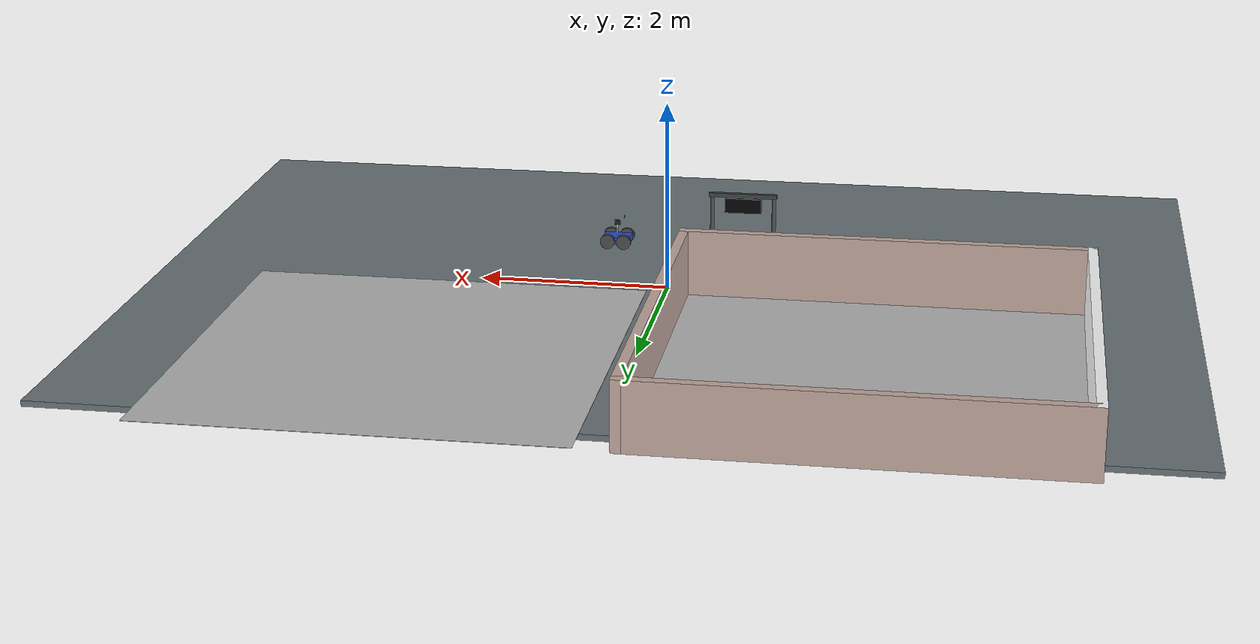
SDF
<sdf version="1.7">
 <world name="model_gallery">
  <gravity>0 0 -9.8</gravity>
  <physics name="default_physics" type="ode">
   <max_step_size>0.001</max_step_size>
   <real_time_update_rate>1000</real_time_update_rate>
  </physics>
  <scene>
   <ambient>0.55 0.55 0.55 1</ambient>
   <background>0.72 0.77 0.82 1</background>
   <shadows>true</shadows>
  </scene>
  <light name="sun" type="directional">
   <pose>0 0 10 0 0 0</pose>
   <diffuse>0.9 0.9 0.9 1</diffuse>
   <specular>0.2 0.2 0.2 1</specular>
   <direction>-0.45 0.25 -0.86</direction>
  </light>
  <model name="gallery_floor">
   <static>true</static>
   <link name="floor">
    <collision name="collision">
     <pose>0 0 -0.035 0 0 0</pose>
     <geometry><box><size>11 8 0.06</size></box></geometry>
    </collision>
    <visual name="visual">
     <pose>0 0 -0.035 0 0 0</pose>
     <geometry><box><size>11 8 0.06</size></box></geometry>
     <material><ambient>0.24 0.27 0.29 1</ambient><diffuse>0.42 0.46 0.48 1</diffuse></material>
    </visual>
   </link>
  </model>
  <include>
   <uri>model://map_plane</uri>
   <name>terrain_original_map_plane</name>
   <pose>-2.3 2.25 0 0 0 0</pose>
  </include>
  <include>
   <uri>model://map_walls</uri>
   <name>competition_map_walls</name>
   <pose>-2.3 2.25 0 0 0 0</pose>
  </include>
  <include>
   <uri>model://my_ground_plane</uri>
   <name>terrain_route_ground</name>
   <pose>2.3 2.25 0.004 0 0 0</pose>
  </include>
  <include>
   <uri>model://traffic_light</uri>
   <name>competition_horizontal_traffic_light</name>
   <pose>-0.65 -1.25 0 0 0 0</pose>
  </include>
  <include>
   <uri>model://traffic_light_red_lens</uri>
   <name>competition_red_lens</name>
   <pose>-0.65 -1.25 0 0 0 0</pose>
  </include>
  <include>
   <uri>model://traffic_light_yellow_lens</uri>
   <name>competition_yellow_lens</name>
   <pose>-0.65 -1.25 0 0 0 0</pose>
  </include>
  <include>
   <uri>model://traffic_light_green_lens</uri>
   <name>competition_green_lens</name>
   <pose>-0.65 -1.25 0 0 0 0</pose>
  </include>
  <include>
   <uri>model://competition_car</uri>
   <name>competition_car</name>
   <pose>0.75 -1.25 0.02 0 0 3.141593</pose>
  </include>
 </world>
</sdf>

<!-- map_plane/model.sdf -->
<sdf version="1.6">
  <model name="map_plane">
    <static>true</static> <!-- 地面静止不动 -->
    <link name="link">
      <!-- 视觉部分 -->
      <visual name="visual">
        <geometry>
          <plane>
            <normal>0 0 1</normal>
            <size>4.2 4.2</size> <!-- 修改平面大小为 4.2x4.2 -->
          </plane>
        </geometry>
        <material>
          <script>
            <uri>model://map_plane/materials/scripts</uri>
            <uri>model://map_plane/materials/textures</uri>
            <name>map/material</name>  <!-- 对应 map.material 中定义的名称 -->
          </script>
        </material>
      </visual>

      <!-- 碰撞部分 -->
      <collision name="collision">
        <geometry>
          <plane>
            <normal>0 0 1</normal>  <!-- 确保碰撞体与视觉体的朝向一致 -->
            <size>4.2 4.2</size> <!-- 修改碰撞体的大小为 4.2x4.2 -->
          </plane>
        </geometry>
      </collision>
    </link>
  </model>
</sdf>

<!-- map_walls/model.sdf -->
<sdf version="1.6">
  <model name="map_walls">
    <static>true</static>

    <link name="south_wall">
      <pose>0 -2.1 0 0 0 0</pose>
      <collision name="collision">
        <pose>0 0 0.35 0 0 0</pose>
        <geometry><box><size>4.3 0.1 0.7</size></box></geometry>
      </collision>
      <visual name="visual">
        <pose>0 0 0.35 0 0 0</pose>
        <geometry><box><size>4.3 0.1 0.7</size></box></geometry>
        <material>
          <ambient>0.760784 0.662745 0.627451 1</ambient>
          <diffuse>0.760784 0.662745 0.627451 1</diffuse>
        </material>
      </visual>
    </link>

    <link name="east_wall">
      <pose>2.1 0 0 0 0 1.5708</pose>
      <collision name="collision">
        <pose>0 0 0.35 0 0 0</pose>
        <geometry><box><size>4.3 0.1 0.7</size></box></geometry>
      </collision>
      <visual name="visual">
        <pose>0 0 0.35 0 0 0</pose>
        <geometry><box><size>4.3 0.1 0.7</size></box></geometry>
        <material>
          <ambient>0.760784 0.662745 0.627451 1</ambient>
          <diffuse>0.760784 0.662745 0.627451 1</diffuse>
        </material>
      </visual>
    </link>

    <link name="north_wall">
      <pose>0 2.1 0 0 0 3.14159</pose>
      <collision name="collision">
        <pose>0 0 0.35 0 0 0</pose>
        <geometry><box><size>4.3 0.1 0.7</size></box></geometry>
      </collision>
      <visual name="visual">
        <pose>0 0 0.35 0 0 0</pose>
        <geometry><box><size>4.3 0.1 0.7</size></box></geometry>
        <material>
          <ambient>0.760784 0.662745 0.627451 1</ambient>
          <diffuse>0.760784 0.662745 0.627451 1</diffuse>
        </material>
      </visual>
    </link>

    <link name="west_wall">
      <pose>-2.1 0 0 0 0 -1.5708</pose>
      <collision name="collision">
        <pose>0 0 0.35 0 0 0</pose>
        <geometry><box><size>4.3 0.1 0.7</size></box></geometry>
      </collision>
      <visual name="visual">
        <pose>0 0 0.35 0 0 0</pose>
        <geometry><box><size>4.3 0.1 0.7</size></box></geometry>
        <material>
          <ambient>1 1 1 1</ambient>
          <diffuse>1 1 1 1</diffuse>
        </material>
      </visual>
    </link>
  </model>
</sdf>

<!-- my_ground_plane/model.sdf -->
<sdf version="1.6">
  <model name="my_ground_plane">
    <static>true</static>
    <link name="link">
      <collision name="collision">
        <geometry><plane><normal>0 0 1</normal><size>4.2 4.2</size></plane></geometry>
      </collision>
      <visual name="visual">
        <pose>0 0 0.002 0 0 0</pose>
        <geometry><plane><normal>0 0 1</normal><size>4.2 4.2</size></plane></geometry>
        <material><script><uri>model://my_ground_plane/materials/scripts</uri><uri>model://my_ground_plane/materials/textures</uri><name>MyGroundPlane/Image</name></script></material>
      </visual>
    </link>
  </model>
</sdf>

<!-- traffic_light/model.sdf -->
<sdf version="1.6">
  <model name="traffic_light">
    <static>true</static>
    <link name="gantry">
      <collision name="left_post_collision">
        <pose>-0.34 0 0.32 0 0 0</pose>
        <geometry><cylinder><radius>0.022</radius><length>0.64</length></cylinder></geometry>
      </collision>
      <collision name="right_post_collision">
        <pose>0.34 0 0.32 0 0 0</pose>
        <geometry><cylinder><radius>0.022</radius><length>0.64</length></cylinder></geometry>
      </collision>
      <collision name="crossbar_collision">
        <pose>0 0 0.66 0 0 0</pose>
        <geometry><box><size>0.75 0.045 0.045</size></box></geometry>
      </collision>
      <collision name="housing_collision">
        <pose>0 0 0.55 0 0 0</pose>
        <geometry><box><size>0.40 0.075 0.16</size></box></geometry>
      </collision>

      <visual name="left_foot">
        <pose>-0.34 0 0.025 0 0 0</pose>
        <geometry><cylinder><radius>0.055</radius><length>0.05</length></cylinder></geometry>
        <material><ambient>0.06 0.07 0.07 1</ambient><diffuse>0.12 0.14 0.14 1</diffuse></material>
      </visual>
      <visual name="right_foot">
        <pose>0.34 0 0.025 0 0 0</pose>
        <geometry><cylinder><radius>0.055</radius><length>0.05</length></cylinder></geometry>
        <material><ambient>0.06 0.07 0.07 1</ambient><diffuse>0.12 0.14 0.14 1</diffuse></material>
      </visual>
      <visual name="left_post">
        <pose>-0.34 0 0.32 0 0 0</pose>
        <geometry><cylinder><radius>0.022</radius><length>0.64</length></cylinder></geometry>
        <material><ambient>0.16 0.18 0.18 1</ambient><diffuse>0.28 0.31 0.31 1</diffuse><specular>0.25 0.25 0.25 1</specular></material>
      </visual>
      <visual name="right_post">
        <pose>0.34 0 0.32 0 0 0</pose>
        <geometry><cylinder><radius>0.022</radius><length>0.64</length></cylinder></geometry>
        <material><ambient>0.16 0.18 0.18 1</ambient><diffuse>0.28 0.31 0.31 1</diffuse><specular>0.25 0.25 0.25 1</specular></material>
      </visual>
      <visual name="crossbar">
        <pose>0 0 0.66 0 0 0</pose>
        <geometry><box><size>0.75 0.045 0.045</size></box></geometry>
        <material><ambient>0.12 0.14 0.14 1</ambient><diffuse>0.24 0.27 0.27 1</diffuse><specular>0.25 0.25 0.25 1</specular></material>
      </visual>
      <visual name="left_hanger">
        <pose>-0.14 0 0.615 0 0 0</pose>
        <geometry><box><size>0.025 0.035 0.07</size></box></geometry>
        <material><ambient>0.06 0.07 0.07 1</ambient><diffuse>0.12 0.14 0.14 1</diffuse></material>
      </visual>
      <visual name="right_hanger">
        <pose>0.14 0 0.615 0 0 0</pose>
        <geometry><box><size>0.025 0.035 0.07</size></box></geometry>
        <material><ambient>0.06 0.07 0.07 1</ambient><diffuse>0.12 0.14 0.14 1</diffuse></material>
      </visual>
      <visual name="housing">
        <pose>0 0 0.55 0 0 0</pose>
        <geometry><box><size>0.40 0.075 0.16</size></box></geometry>
        <material><ambient>0.008 0.010 0.010 1</ambient><diffuse>0.016 0.020 0.020 1</diffuse><specular>0.10 0.10 0.10 1</specular></material>
      </visual>
      <visual name="red_lens_off">
        <pose>-0.12 -0.044 0.55 1.570796 0 0</pose>
        <geometry><cylinder><radius>0.045</radius><length>0.014</length></cylinder></geometry>
        <material><ambient>0.030 0.001 0.001 1</ambient><diffuse>0.045 0.002 0.002 1</diffuse></material>
      </visual>
      <visual name="yellow_lens_off">
        <pose>0 -0.044 0.55 1.570796 0 0</pose>
        <geometry><cylinder><radius>0.045</radius><length>0.014</length></cylinder></geometry>
        <material><ambient>0.025 0.015 0.001 1</ambient><diffuse>0.040 0.024 0.002 1</diffuse></material>
      </visual>
      <visual name="green_lens_off">
        <pose>0.12 -0.044 0.55 1.570796 0 0</pose>
        <geometry><cylinder><radius>0.045</radius><length>0.014</length></cylinder></geometry>
        <material><ambient>0.001 0.030 0.003 1</ambient><diffuse>0.002 0.045 0.004 1</diffuse></material>
      </visual>
    </link>
  </model>
</sdf>

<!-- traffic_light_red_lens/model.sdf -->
<sdf version="1.6">
  <model name="traffic_light_red_lens">
    <static>false</static>
    <link name="lens">
      <gravity>false</gravity>
      <kinematic>true</kinematic>
      <visual name="red_visual">
        <pose>-0.12 -0.046 0.55 1.570796 0 0</pose>
        <cast_shadows>false</cast_shadows>
        <geometry><cylinder><radius>0.041</radius><length>0.016</length></cylinder></geometry>
        <material>
          <ambient>1.0 0.005 0.005 1</ambient>
          <diffuse>1.0 0.005 0.005 1</diffuse>
          <emissive>0.58 0.003 0.003 1</emissive>
          <specular>0.15 0.15 0.15 1</specular>
        </material>
      </visual>
    </link>
  </model>
</sdf>

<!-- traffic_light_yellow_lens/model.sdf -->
<sdf version="1.6">
  <model name="traffic_light_yellow_lens">
    <static>false</static>
    <link name="lens">
      <gravity>false</gravity>
      <kinematic>true</kinematic>
      <visual name="yellow_visual">
        <pose>0 -0.046 0.55 1.570796 0 0</pose>
        <cast_shadows>false</cast_shadows>
        <geometry><cylinder><radius>0.041</radius><length>0.016</length></cylinder></geometry>
        <material>
          <ambient>1.0 0.72 0.005 1</ambient>
          <diffuse>1.0 0.72 0.005 1</diffuse>
          <emissive>0.58 0.40 0.003 1</emissive>
          <specular>0.15 0.15 0.15 1</specular>
        </material>
      </visual>
    </link>
  </model>
</sdf>

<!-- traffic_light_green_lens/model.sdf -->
<sdf version="1.6">
  <model name="traffic_light_green_lens">
    <static>false</static>
    <link name="lens">
      <gravity>false</gravity>
      <kinematic>true</kinematic>
      <visual name="green_visual">
        <pose>0.12 -0.046 0.55 1.570796 0 0</pose>
        <cast_shadows>false</cast_shadows>
        <geometry><cylinder><radius>0.041</radius><length>0.016</length></cylinder></geometry>
        <material>
          <ambient>0.005 1.0 0.02 1</ambient>
          <diffuse>0.005 1.0 0.02 1</diffuse>
          <emissive>0.003 0.58 0.012 1</emissive>
          <specular>0.15 0.15 0.15 1</specular>
        </material>
      </visual>
    </link>
  </model>
</sdf>

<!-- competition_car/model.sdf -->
<sdf version='1.7'>
  <model name='armbot'>
    <link name='base_footprint'>
      <inertial>
        <pose>0.00127 0 0.116548 0 -0 0</pose>
        <mass>0.63</mass>
        <inertia>
          <ixx>0.00750366</ixx>
          <ixy>0</ixy>
          <ixz>-0.000172762</ixz>
          <iyy>0.00896664</iyy>
          <iyz>0</iyz>
          <izz>0.00204336</izz>
        </inertia>
      </inertial>
      <collision name='base_footprint_fixed_joint_lump__base_link_collision'>
        <pose>0 0 0.08 0 -0 0</pose>
        <geometry>
          <box>
            <size>0.3 0.2 0.08</size>
          </box>
        </geometry>
        <surface>
          <contact>
            <ode/>
          </contact>
          <friction>
            <ode/>
          </friction>
        </surface>
      </collision>
      <collision name='base_footprint_fixed_joint_lump__camera_collision_1'>
        <pose>0.08 0 0.3325 0 -0 0</pose>
        <geometry>
          <box>
            <size>0.01 0.025 0.025</size>
          </box>
        </geometry>
        <surface>
          <contact>
            <ode/>
          </contact>
          <friction>
            <ode/>
          </friction>
        </surface>
      </collision>
      <collision name='base_footprint_fixed_joint_lump__support_collision_2'>
        <pose>0 0 0.18 0 -0 0</pose>
        <geometry>
          <cylinder>
            <length>0.12</length>
            <radius>0.01</radius>
          </cylinder>
        </geometry>
        <surface>
          <contact>
            <ode/>
          </contact>
          <friction>
            <ode/>
          </friction>
        </surface>
      </collision>
      <collision name='base_footprint_fixed_joint_lump__laser_collision_3'>
        <pose>0 0 0.265 0 -0 0</pose>
        <geometry>
          <cylinder>
            <length>0.05</length>
            <radius>0.03</radius>
          </cylinder>
        </geometry>
        <surface>
          <contact>
            <ode/>
          </contact>
          <friction>
            <ode/>
          </friction>
        </surface>
      </collision>
      <visual name='base_footprint_fixed_joint_lump__base_link_visual'>
        <pose>0 0 0.08 0 -0 0</pose>
        <geometry>
          <box>
            <size>0.3 0.2 0.08</size>
          </box>
        </geometry>
        <material>
          <script>
            <name>Gazebo/Blue</name>
            <uri>file://media/materials/scripts/gazebo.material</uri>
          </script>
        </material>
      </visual>
      <visual name='base_footprint_fixed_joint_lump__camera_visual_1'>
        <pose>0.08 0 0.3325 0 -0 0</pose>
        <geometry>
          <box>
            <size>0.01 0.025 0.025</size>
          </box>
        </geometry>
        <material>
          <script>
            <name>Gazebo/Blue</name>
            <uri>file://media/materials/scripts/gazebo.material</uri>
          </script>
        </material>
      </visual>
      <visual name='base_footprint_fixed_joint_lump__support_visual_2'>
        <pose>0 0 0.18 0 -0 0</pose>
        <geometry>
          <cylinder>
            <length>0.12</length>
            <radius>0.01</radius>
          </cylinder>
        </geometry>
        <material>
          <script>
            <name>Gazebo/White</name>
            <uri>file://media/materials/scripts/gazebo.material</uri>
          </script>
        </material>
      </visual>
      <visual name='base_footprint_fixed_joint_lump__laser_visual_3'>
        <pose>0 0 0.265 0 -0 0</pose>
        <geometry>
          <cylinder>
            <length>0.05</length>
            <radius>0.03</radius>
          </cylinder>
        </geometry>
        <material>
          <script>
            <name>Gazebo/Black</name>
            <uri>file://media/materials/scripts/gazebo.material</uri>
          </script>
        </material>
      </visual>
      <sensor name='camera_node' type='camera'>
        <update_rate>30</update_rate>
        <camera name='head'>
          <horizontal_fov>1.39626</horizontal_fov>
          <image>
            <width>1280</width>
            <height>720</height>
            <format>R8G8B8</format>
          </image>
          <clip>
            <near>0.02</near>
            <far>300</far>
          </clip>
          <noise>
            <type>gaussian</type>
            <mean>0</mean>
            <stddev>0.007</stddev>
          </noise>
        </camera>
        <plugin name='gazebo_camera' filename='libgazebo_ros_camera.so'>
          <alwaysOn>1</alwaysOn>
          <updateRate>0.0</updateRate>
          <cameraName>camera</cameraName>
          <imageTopicName>image_raw</imageTopicName>
          <cameraInfoTopicName>camera_info</cameraInfoTopicName>
          <frameName>camera</frameName>
          <hackBaseline>0.07</hackBaseline>
          <distortionK1>0.0</distortionK1>
          <distortionK2>0.0</distortionK2>
          <distortionK3>0.0</distortionK3>
          <distortionT1>0.0</distortionT1>
          <distortionT2>0.0</distortionT2>
        </plugin>
        <pose>0.08 0 0.3325 0 -0 0</pose>
      </sensor>
      <sensor name='laser_sensor' type='ray'>
        <visualize>0</visualize>
        <update_rate>40</update_rate>
        <ray>
          <scan>
            <horizontal>
              <samples>720</samples>
              <resolution>1</resolution>
              <min_angle>-2.35619</min_angle>
              <max_angle>2.35619</max_angle>
            </horizontal>
          </scan>
          <range>
            <min>0.1</min>
            <max>12</max>
            <resolution>0.01</resolution>
          </range>
          <noise>
            <type>gaussian</type>
            <mean>0</mean>
            <stddev>0.01</stddev>
          </noise>
        </ray>
        <plugin name='gazebo_ros_laser_controller' filename='libgazebo_ros_laser.so'>
          <topicName>/scan</topicName>
          <frameName>laser</frameName>
        </plugin>
        <pose>0 0 0.265 0 -0 0</pose>
      </sensor>
    </link>
    <joint name='back_left_wheel_joint' type='revolute'>
      <pose relative_to='base_footprint'>-0.09 0.132 0.08 0 -0 0</pose>
      <parent>base_footprint</parent>
      <child>back_left_wheel</child>
      <axis>
        <xyz>0 1 0</xyz>
        <limit>
          <lower>-1e+16</lower>
          <upper>1e+16</upper>
        </limit>
        <dynamics>
          <damping>0</damping>
          <friction>0</friction>
          <spring_reference>0</spring_reference>
          <spring_stiffness>0</spring_stiffness>
        </dynamics>
      </axis>
    </joint>
    <link name='back_left_wheel'>
      <pose relative_to='back_left_wheel_joint'>0 0 0 0 -0 0</pose>
      <inertial>
        <pose>0 0 0 0 -0 0</pose>
        <mass>0.1</mass>
        <inertia>
          <ixx>0.000173333</ixx>
          <ixy>0</ixy>
          <ixz>0</ixz>
          <iyy>0.000173333</iyy>
          <iyz>0</iyz>
          <izz>0.00032</izz>
        </inertia>
      </inertial>
      <collision name='back_left_wheel_collision'>
        <pose>0 0 0 1.5708 -0 0</pose>
        <geometry>
          <cylinder>
            <length>0.04</length>
            <radius>0.08</radius>
          </cylinder>
        </geometry>
        <surface>
          <contact>
            <ode>
              <kp>1e+06</kp>
              <kd>1</kd>
            </ode>
          </contact>
          <friction>
            <ode>
              <mu>1</mu>
              <mu2>1</mu2>
            </ode>
          </friction>
        </surface>
      </collision>
      <visual name='back_left_wheel_visual'>
        <pose>0 0 0 1.5708 -0 0</pose>
        <geometry>
          <cylinder>
            <length>0.04</length>
            <radius>0.08</radius>
          </cylinder>
        </geometry>
        <material>
          <script>
            <name>Gazebo/DarkGrey</name>
            <uri>file://media/materials/scripts/gazebo.material</uri>
          </script>
        </material>
      </visual>
    </link>
    <joint name='back_right_wheel_joint' type='revolute'>
      <pose relative_to='base_footprint'>-0.09 -0.132 0.08 0 -0 0</pose>
      <parent>base_footprint</parent>
      <child>back_right_wheel</child>
      <axis>
        <xyz>0 1 0</xyz>
        <limit>
          <lower>-1e+16</lower>
          <upper>1e+16</upper>
        </limit>
        <dynamics>
          <damping>0</damping>
          <friction>0</friction>
          <spring_reference>0</spring_reference>
          <spring_stiffness>0</spring_stiffness>
        </dynamics>
      </axis>
    </joint>
    <link name='back_right_wheel'>
      <pose relative_to='back_right_wheel_joint'>0 0 0 0 -0 0</pose>
      <inertial>
        <pose>0 0 0 0 -0 0</pose>
        <mass>0.1</mass>
        <inertia>
          <ixx>0.000173333</ixx>
          <ixy>0</ixy>
          <ixz>0</ixz>
          <iyy>0.000173333</iyy>
          <iyz>0</iyz>
          <izz>0.00032</izz>
        </inertia>
      </inertial>
      <collision name='back_right_wheel_collision'>
        <pose>0 0 0 1.5708 -0 0</pose>
        <geometry>
          <cylinder>
            <length>0.04</length>
            <radius>0.08</radius>
          </cylinder>
        </geometry>
        <surface>
          <contact>
            <ode>
              <kp>1e+06</kp>
              <kd>1</kd>
            </ode>
          </contact>
          <friction>
            <ode>
              <mu>1</mu>
              <mu2>1</mu2>
            </ode>
          </friction>
        </surface>
      </collision>
      <visual name='back_right_wheel_visual'>
        <pose>0 0 0 1.5708 -0 0</pose>
        <geometry>
          <cylinder>
            <length>0.04</length>
            <radius>0.08</radius>
          </cylinder>
        </geometry>
        <material>
          <script>
            <name>Gazebo/DarkGrey</name>
            <uri>file://media/materials/scripts/gazebo.material</uri>
          </script>
        </material>
      </visual>
    </link>
    <joint name='front_left_wheel_joint' type='revolute'>
      <pose relative_to='base_footprint'>0.09 0.132 0.08 0 -0 0</pose>
      <parent>base_footprint</parent>
      <child>front_left_wheel</child>
      <axis>
        <xyz>0 1 0</xyz>
        <limit>
          <lower>-1e+16</lower>
          <upper>1e+16</upper>
        </limit>
        <dynamics>
          <damping>0</damping>
          <friction>0</friction>
          <spring_reference>0</spring_reference>
          <spring_stiffness>0</spring_stiffness>
        </dynamics>
      </axis>
    </joint>
    <link name='front_left_wheel'>
      <pose relative_to='front_left_wheel_joint'>0 0 0 0 -0 0</pose>
      <inertial>
        <pose>0 0 0 0 -0 0</pose>
        <mass>0.1</mass>
        <inertia>
          <ixx>0.000173333</ixx>
          <ixy>0</ixy>
          <ixz>0</ixz>
          <iyy>0.000173333</iyy>
          <iyz>0</iyz>
          <izz>0.00032</izz>
        </inertia>
      </inertial>
      <collision name='front_left_wheel_collision'>
        <pose>0 0 0 1.5708 -0 0</pose>
        <geometry>
          <cylinder>
            <length>0.04</length>
            <radius>0.08</radius>
          </cylinder>
        </geometry>
        <surface>
          <contact>
            <ode>
              <kp>1e+06</kp>
              <kd>1</kd>
            </ode>
          </contact>
          <friction>
            <ode>
              <mu>1</mu>
              <mu2>1</mu2>
            </ode>
          </friction>
        </surface>
      </collision>
      <visual name='front_left_wheel_visual'>
        <pose>0 0 0 1.5708 -0 0</pose>
        <geometry>
          <cylinder>
            <length>0.04</length>
            <radius>0.08</radius>
          </cylinder>
        </geometry>
        <material>
          <script>
            <name>Gazebo/DarkGrey</name>
            <uri>file://media/materials/scripts/gazebo.material</uri>
          </script>
        </material>
      </visual>
    </link>
    <joint name='front_right_wheel_joint' type='revolute'>
      <pose relative_to='base_footprint'>0.09 -0.132 0.08 0 -0 0</pose>
      <parent>base_footprint</parent>
      <child>front_right_wheel</child>
      <axis>
        <xyz>0 1 0</xyz>
        <limit>
          <lower>-1e+16</lower>
          <upper>1e+16</upper>
        </limit>
        <dynamics>
          <damping>0</damping>
          <friction>0</friction>
          <spring_reference>0</spring_reference>
          <spring_stiffness>0</spring_stiffness>
        </dynamics>
      </axis>
    </joint>
    <link name='front_right_wheel'>
      <pose relative_to='front_right_wheel_joint'>0 0 0 0 -0 0</pose>
      <inertial>
        <pose>0 0 0 0 -0 0</pose>
        <mass>0.1</mass>
        <inertia>
          <ixx>0.000173333</ixx>
          <ixy>0</ixy>
          <ixz>0</ixz>
          <iyy>0.000173333</iyy>
          <iyz>0</iyz>
          <izz>0.00032</izz>
        </inertia>
      </inertial>
      <collision name='front_right_wheel_collision'>
        <pose>0 0 0 1.5708 -0 0</pose>
        <geometry>
          <cylinder>
            <length>0.04</length>
            <radius>0.08</radius>
          </cylinder>
        </geometry>
        <surface>
          <contact>
            <ode>
              <kp>1e+06</kp>
              <kd>1</kd>
            </ode>
          </contact>
          <friction>
            <ode>
              <mu>1</mu>
              <mu2>1</mu2>
            </ode>
          </friction>
        </surface>
      </collision>
      <visual name='front_right_wheel_visual'>
        <pose>0 0 0 1.5708 -0 0</pose>
        <geometry>
          <cylinder>
            <length>0.04</length>
            <radius>0.08</radius>
          </cylinder>
        </geometry>
        <material>
          <script>
            <name>Gazebo/DarkGrey</name>
            <uri>file://media/materials/scripts/gazebo.material</uri>
          </script>
        </material>
      </visual>
    </link>
    <plugin name='mobile_base_controller' filename='libgazebo_ros_skid_steer_drive.so'>
      <updateRate>100.0</updateRate>
      <robotNamespace>/</robotNamespace>
      <leftFrontJoint>front_left_wheel_joint</leftFrontJoint>
      <rightFrontJoint>front_right_wheel_joint</rightFrontJoint>
      <leftRearJoint>back_left_wheel_joint</leftRearJoint>
      <rightRearJoint>back_right_wheel_joint</rightRearJoint>
      <wheelSeparation>0.26400000000000007</wheelSeparation>
      <wheelDiameter>0.16</wheelDiameter>
      <robotBaseFrame>base_footprint</robotBaseFrame>
      <torque>20</torque>
      <commandTopic>/cmd_vel</commandTopic>
      <odometryTopic>/odom</odometryTopic>
      <odometryFrame>odom</odometryFrame>
      <broadcastTF>1</broadcastTF>
      <odometryRate>30.0</odometryRate>
      <covariance_x>0.001</covariance_x>
      <covariance_y>0.001</covariance_y>
      <covariance_yaw>0.01</covariance_yaw>
    </plugin>
    <frame name='camera2base_link' attached_to='base_link'>
      <pose>0.08 0 0.2525 0 -0 0</pose>
    </frame>
    <frame name='camera' attached_to='camera2base_link'/>
    <frame name='laser2support' attached_to='support'>
      <pose>0 0 0.085 0 -0 0</pose>
    </frame>
    <frame name='laser' attached_to='laser2support'/>
    <frame name='support2base_link' attached_to='base_link'>
      <pose>0 0 0.1 0 -0 0</pose>
    </frame>
    <frame name='support' attached_to='support2base_link'/>
    <frame name='base_link2base_footprint' attached_to='base_footprint'>
      <pose>0 0 0.08 0 -0 0</pose>
    </frame>
    <frame name='base_link' attached_to='base_link2base_footprint'/>
  </model>
</sdf>
